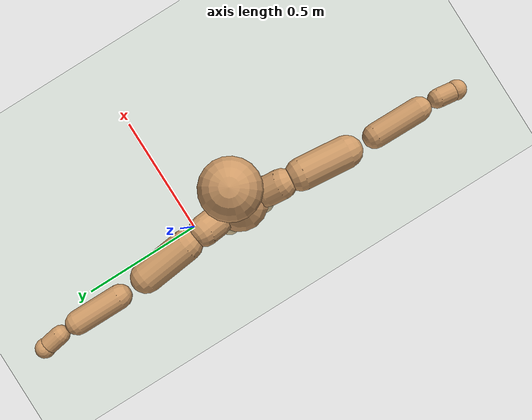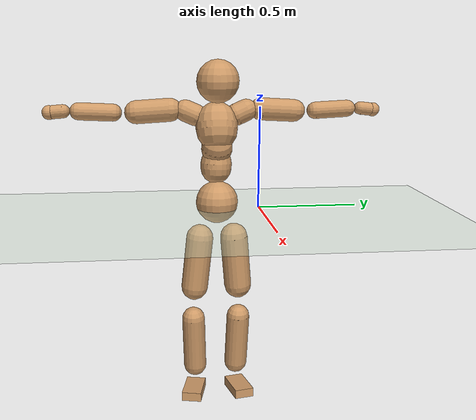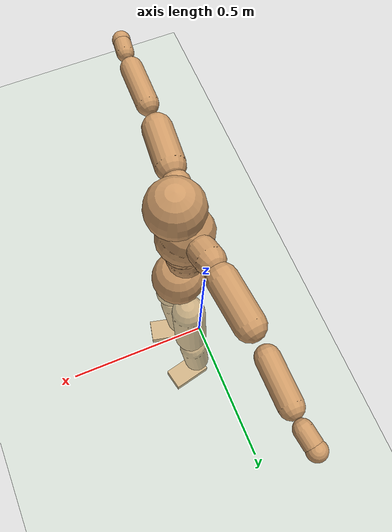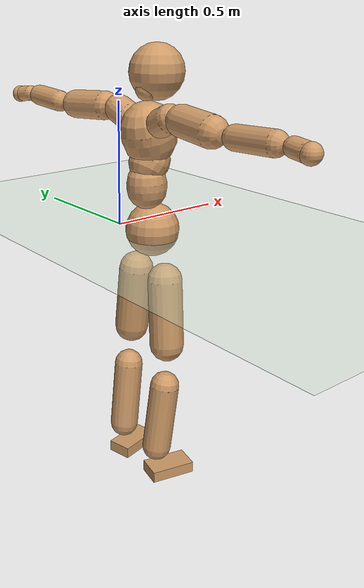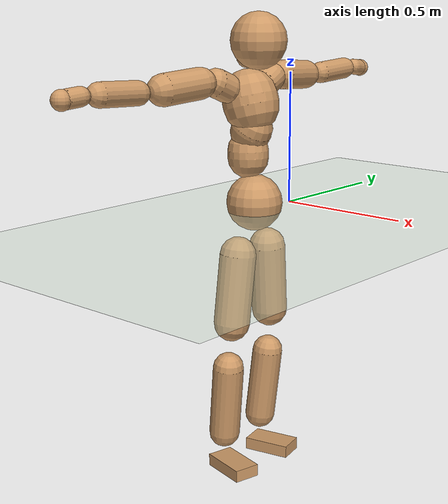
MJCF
<mujoco model="humanoid">
  <compiler coordinate="local" angle="radian"/>
  <default>
    <joint damping="0.0" armature="0.01" stiffness="0.0" limited="true"/>
    <geom conaffinity="1" condim="3" contype="7" margin="0.001" rgba="0.8 0.6 .4 1"/>
  </default>
  <asset>
    <texture type="skybox" builtin="gradient" rgb1=".4 .5 .6" rgb2="0 0 0" width="100" height="100"/>
    <texture builtin="flat" height="1278" mark="cross" markrgb="1 1 1" name="texgeom" random="0.01" rgb1="0.8 0.6 0.4" rgb2="0.8 0.6 0.4" type="cube" width="127"/>
    <texture builtin="checker" height="100" name="texplane" rgb1="0 0 0" rgb2="0.8 0.8 0.8" type="2d" width="100"/>
    <material name="MatPlane" reflectance="0.5" shininess="1" specular="1" texrepeat="60 60" texture="texplane"/>
    <material name="geom" texture="texgeom" texuniform="true"/>
  </asset>
  <worldbody>
    <light cutoff="100" diffuse="1 1 1" dir="-0 0 -1.3" directional="true" exponent="1" pos="0 0 1.3" specular=".1 .1 .1"/>
    <geom conaffinity="1" condim="3" name="floor" pos="0 0 0" rgba="0.8 0.9 0.8 1" size="100 100 .2" type="plane" material="MatPlane"/>
    <body name="Pelvis" pos="0.0005 -0.2119 0.032">
      <freejoint name="Pelvis"/>
      <geom type="sphere" contype="1" conaffinity="1" density="500" size="0.1054" pos="0.0000 0.0000 0.0000" name="Pelvis"/>
      <body name="L_Hip" pos="-0.0076 0.0808 -0.0994">
        <joint name="L_Hip_x" type="hinge" pos="0 0 0" axis="1 0 0" stiffness="800" damping="80" armature="0.02" range="-180.0000 180.0000"/>
        <joint name="L_Hip_y" type="hinge" pos="0 0 0" axis="0 1 0" stiffness="800" damping="80" armature="0.02" range="-180.0000 180.0000"/>
        <joint name="L_Hip_z" type="hinge" pos="0 0 0" axis="0 0 1" stiffness="800" damping="80" armature="0.02" range="-180.0000 180.0000"/>
        <geom type="capsule" contype="1" conaffinity="1" density="500" fromto="-0.0021 0.0076 -0.0869 -0.0083 0.0303 -0.3476" size="0.0692" name="L_Hip"/>
        <body name="L_Knee" pos="-0.0103 0.0379 -0.4345">
          <joint name="L_Knee_x" type="hinge" pos="0 0 0" axis="1 0 0" stiffness="800" damping="80" armature="0.02" range="-180.0000 180.0000"/>
          <joint name="L_Knee_y" type="hinge" pos="0 0 0" axis="0 1 0" stiffness="800" damping="80" armature="0.02" range="-180.0000 180.0000"/>
          <joint name="L_Knee_z" type="hinge" pos="0 0 0" axis="0 0 1" stiffness="800" damping="80" armature="0.02" range="-180.0000 180.0000"/>
          <geom type="capsule" contype="1" conaffinity="1" density="500" fromto="-0.0106 -0.0025 -0.0928 -0.0423 -0.0100 -0.3713" size="0.0591" name="L_Knee"/>
          <body name="L_Ankle" pos="-0.0529 -0.0124 -0.4641">
            <joint name="L_Ankle_x" type="hinge" pos="0 0 0" axis="1 0 0" stiffness="800" damping="80" armature="0.02" range="-180.0000 180.0000"/>
            <joint name="L_Ankle_y" type="hinge" pos="0 0 0" axis="0 1 0" stiffness="800" damping="80" armature="0.02" range="-180.0000 180.0000"/>
            <joint name="L_Ankle_z" type="hinge" pos="0 0 0" axis="0 0 1" stiffness="800" damping="80" armature="0.02" range="-180.0000 180.0000"/>
            <geom type="box" contype="1" conaffinity="1" density="500" pos="0.0636 0.0139 -0.0325" size="0.0902 0.05 0.0234" quat="0.9942 0.0000 0.0000 0.1076" name="L_Ankle"/>
            <body name="L_Toe" pos="0.1273 0.0279 -0.0649">
              <joint name="L_Toe_x" type="hinge" pos="0 0 0" axis="1 0 0" stiffness="500" damping="50" armature="0.02" range="-180.0000 180.0000"/>
              <joint name="L_Toe_y" type="hinge" pos="0 0 0" axis="0 1 0" stiffness="500" damping="50" armature="0.02" range="-180.0000 180.0000"/>
              <joint name="L_Toe_z" type="hinge" pos="0 0 0" axis="0 0 1" stiffness="500" damping="50" armature="0.02" range="-180.0000 180.0000"/>
              <geom type="box" contype="1" conaffinity="1" density="500" pos="0.0000 0.0000 0.0322" size="0.001 0.0025 0.0012" quat="0.9936 0.0000 0.0000 0.1133" name="L_Toe"/>
            </body>
          </body>
        </body>
      </body>
      <body name="R_Hip" pos="-0.0032 -0.0778 -0.0988">
        <joint name="R_Hip_x" type="hinge" pos="0 0 0" axis="1 0 0" stiffness="800" damping="80" armature="0.02" range="-180.0000 180.0000"/>
        <joint name="R_Hip_y" type="hinge" pos="0 0 0" axis="0 1 0" stiffness="800" damping="80" armature="0.02" range="-180.0000 180.0000"/>
        <joint name="R_Hip_z" type="hinge" pos="0 0 0" axis="0 0 1" stiffness="800" damping="80" armature="0.02" range="-180.0000 180.0000"/>
        <geom type="capsule" contype="1" conaffinity="1" density="500" fromto="-0.0026 -0.0092 -0.0881 -0.0105 -0.0368 -0.3523" size="0.0682" name="R_Hip"/>
        <body name="R_Knee" pos="-0.0131 -0.046 -0.4404">
          <joint name="R_Knee_x" type="hinge" pos="0 0 0" axis="1 0 0" stiffness="800" damping="80" armature="0.02" range="-180.0000 180.0000"/>
          <joint name="R_Knee_y" type="hinge" pos="0 0 0" axis="0 1 0" stiffness="800" damping="80" armature="0.02" range="-180.0000 180.0000"/>
          <joint name="R_Knee_z" type="hinge" pos="0 0 0" axis="0 0 1" stiffness="800" damping="80" armature="0.02" range="-180.0000 180.0000"/>
          <geom type="capsule" contype="1" conaffinity="1" density="500" fromto="-0.0102 0.0032 -0.0930 -0.0407 0.0126 -0.3719" size="0.0591" name="R_Knee"/>
          <body name="R_Ankle" pos="-0.0509 0.0158 -0.4649">
            <joint name="R_Ankle_x" type="hinge" pos="0 0 0" axis="1 0 0" stiffness="800" damping="80" armature="0.02" range="-180.0000 180.0000"/>
            <joint name="R_Ankle_y" type="hinge" pos="0 0 0" axis="0 1 0" stiffness="800" damping="80" armature="0.02" range="-180.0000 180.0000"/>
            <joint name="R_Ankle_z" type="hinge" pos="0 0 0" axis="0 0 1" stiffness="800" damping="80" armature="0.02" range="-180.0000 180.0000"/>
            <geom type="box" contype="1" conaffinity="1" density="500" pos="0.0658 -0.0152 -0.0278" size="0.0922 0.0504 0.0231" quat="0.9936 0.0000 0.0000 -0.1134" name="R_Ankle"/>
            <body name="R_Toe" pos="0.1316 -0.0304 -0.0556">
              <joint name="R_Toe_x" type="hinge" pos="0 0 0" axis="1 0 0" stiffness="500" damping="50" armature="0.02" range="-180.0000 180.0000"/>
              <joint name="R_Toe_y" type="hinge" pos="0 0 0" axis="0 1 0" stiffness="500" damping="50" armature="0.02" range="-180.0000 180.0000"/>
              <joint name="R_Toe_z" type="hinge" pos="0 0 0" axis="0 0 1" stiffness="500" damping="50" armature="0.02" range="-180.0000 180.0000"/>
              <geom type="box" contype="1" conaffinity="1" density="500" pos="0.0000 0.0000 0.0304" size="0.0009 0.0025 0.0013" quat="0.9945 0.0000 0.0000 -0.1046" name="R_Toe"/>
            </body>
          </body>
        </body>
      </body>
      <body name="Torso" pos="-0.028 -0.0028 0.1143">
        <joint name="Torso_x" type="hinge" pos="0 0 0" axis="1 0 0" stiffness="1000" damping="100" armature="0.02" range="-180.0000 180.0000"/>
        <joint name="Torso_y" type="hinge" pos="0 0 0" axis="0 1 0" stiffness="1000" damping="100" armature="0.02" range="-180.0000 180.0000"/>
        <joint name="Torso_z" type="hinge" pos="0 0 0" axis="0 0 1" stiffness="1000" damping="100" armature="0.02" range="-180.0000 180.0000"/>
        <geom type="capsule" contype="1" conaffinity="1" density="500" fromto="-0.0025 0.0020 0.0775 -0.0017 0.0014 0.0517" size="0.077" name="Torso"/>
        <body name="Spine" pos="-0.0042 0.0034 0.1291">
          <joint name="Spine_x" type="hinge" pos="0 0 0" axis="1 0 0" stiffness="1000" damping="100" armature="0.02" range="-180.0000 180.0000"/>
          <joint name="Spine_y" type="hinge" pos="0 0 0" axis="0 1 0" stiffness="1000" damping="100" armature="0.02" range="-180.0000 180.0000"/>
          <joint name="Spine_z" type="hinge" pos="0 0 0" axis="0 0 1" stiffness="1000" damping="100" armature="0.02" range="-180.0000 180.0000"/>
          <geom type="capsule" contype="1" conaffinity="1" density="500" fromto="0.0196 0.0007 0.0312 0.0131 0.0005 0.0208" size="0.0772" name="Spine"/>
          <body name="Chest" pos="0.0327 0.0012 0.052">
            <joint name="Chest_x" type="hinge" pos="0 0 0" axis="1 0 0" stiffness="1000" damping="100" armature="0.02" range="-180.0000 180.0000"/>
            <joint name="Chest_y" type="hinge" pos="0 0 0" axis="0 1 0" stiffness="1000" damping="100" armature="0.02" range="-180.0000 180.0000"/>
            <joint name="Chest_z" type="hinge" pos="0 0 0" axis="0 0 1" stiffness="1000" damping="100" armature="0.02" range="-180.0000 180.0000"/>
            <geom type="capsule" contype="1" conaffinity="1" density="500" fromto="-0.0256 -0.0008 0.0953 -0.0171 -0.0006 0.0635" size="0.1038" name="Chest"/>
            <body name="Neck" pos="-0.0439 -0.0026 0.2272">
              <joint name="Neck_x" type="hinge" pos="0 0 0" axis="1 0 0" stiffness="500" damping="50" armature="0.02" range="-180.0000 180.0000"/>
              <joint name="Neck_y" type="hinge" pos="0 0 0" axis="0 1 0" stiffness="500" damping="50" armature="0.02" range="-180.0000 180.0000"/>
              <joint name="Neck_z" type="hinge" pos="0 0 0" axis="0 0 1" stiffness="500" damping="50" armature="0.02" range="-180.0000 180.0000"/>
              <geom type="capsule" contype="1" conaffinity="1" density="500" fromto="0.0119 0.0007 0.0143 0.0478 0.0028 0.0571" size="0.0439" name="Neck"/>
              <body name="Head" pos="0.0597 0.0035 0.0713">
                <joint name="Head_x" type="hinge" pos="0 0 0" axis="1 0 0" stiffness="500" damping="50" armature="0.02" range="-180.0000 180.0000"/>
                <joint name="Head_y" type="hinge" pos="0 0 0" axis="0 1 0" stiffness="500" damping="50" armature="0.02" range="-180.0000 180.0000"/>
                <joint name="Head_z" type="hinge" pos="0 0 0" axis="0 0 1" stiffness="500" damping="50" armature="0.02" range="-180.0000 180.0000"/>
                <geom type="sphere" contype="1" conaffinity="1" density="500" size="0.1040" pos="0.0000 0.0000 0.0000" name="Head"/>
              </body>
            </body>
            <body name="L_Thorax" pos="-0.0394 0.0801 0.1253">
              <joint name="L_Thorax_x" type="hinge" pos="0 0 0" axis="1 0 0" stiffness="500" damping="50" armature="0.02" range="-180.0000 180.0000"/>
              <joint name="L_Thorax_y" type="hinge" pos="0 0 0" axis="0 1 0" stiffness="500" damping="50" armature="0.02" range="-180.0000 180.0000"/>
              <joint name="L_Thorax_z" type="hinge" pos="0 0 0" axis="0 0 1" stiffness="500" damping="50" armature="0.02" range="-180.0000 180.0000"/>
              <geom type="capsule" contype="1" conaffinity="1" density="500" fromto="-0.0019 0.0171 0.0074 -0.0076 0.0684 0.0295" size="0.0542" name="L_Thorax"/>
              <body name="L_Shoulder" pos="-0.0096 0.0855 0.0369">
                <joint name="L_Shoulder_x" type="hinge" pos="0 0 0" axis="1 0 0" stiffness="500" damping="50" armature="0.02" range="-720.0000 720.0000"/>
                <joint name="L_Shoulder_y" type="hinge" pos="0 0 0" axis="0 1 0" stiffness="500" damping="50" armature="0.02" range="-720.0000 720.0000"/>
                <joint name="L_Shoulder_z" type="hinge" pos="0 0 0" axis="0 0 1" stiffness="500" damping="50" armature="0.02" range="-720.0000 720.0000"/>
                <geom type="capsule" contype="1" conaffinity="1" density="500" fromto="-0.0067 0.0570 -0.0038 -0.0268 0.2282 -0.0152" size="0.0555" name="L_Shoulder"/>
                <body name="L_Elbow" pos="-0.0335 0.2852 -0.019">
                  <joint name="L_Elbow_x" type="hinge" pos="0 0 0" axis="1 0 0" stiffness="500" damping="50" armature="0.02" range="-720.0000 720.0000"/>
                  <joint name="L_Elbow_y" type="hinge" pos="0 0 0" axis="0 1 0" stiffness="500" damping="50" armature="0.02" range="-720.0000 720.0000"/>
                  <joint name="L_Elbow_z" type="hinge" pos="0 0 0" axis="0 0 1" stiffness="500" damping="50" armature="0.02" range="-720.0000 720.0000"/>
                  <geom type="capsule" contype="1" conaffinity="1" density="500" fromto="0.0001 0.0540 0.0027 0.0003 0.2158 0.0109" size="0.0423" name="L_Elbow"/>
                  <body name="L_Wrist" pos="0.0004 0.2698 0.0136">
                    <joint name="L_Wrist_x" type="hinge" pos="0 0 0" axis="1 0 0" stiffness="300" damping="30" armature="0.02" range="-180.0000 180.0000"/>
                    <joint name="L_Wrist_y" type="hinge" pos="0 0 0" axis="0 1 0" stiffness="300" damping="30" armature="0.02" range="-180.0000 180.0000"/>
                    <joint name="L_Wrist_z" type="hinge" pos="0 0 0" axis="0 0 1" stiffness="300" damping="30" armature="0.02" range="-180.0000 180.0000"/>
                    <geom type="capsule" contype="1" conaffinity="1" density="500" fromto="-0.0029 0.0172 -0.0021 -0.0116 0.0688 -0.0085" size="0.0323" name="L_Wrist"/>
                    <body name="L_Hand" pos="-0.0145 0.086 -0.0106">
                      <joint name="L_Hand_x" type="hinge" pos="0 0 0" axis="1 0 0" stiffness="300" damping="30" armature="0.02" range="-180.0000 180.0000"/>
                      <joint name="L_Hand_y" type="hinge" pos="0 0 0" axis="0 1 0" stiffness="300" damping="30" armature="0.02" range="-180.0000 180.0000"/>
                      <joint name="L_Hand_z" type="hinge" pos="0 0 0" axis="0 0 1" stiffness="300" damping="30" armature="0.02" range="-180.0000 180.0000"/>
                      <geom type="sphere" contype="1" conaffinity="1" density="500" size="0.0346" pos="0.0000 0.0000 0.0000" name="L_Hand"/>
                    </body>
                  </body>
                </body>
              </body>
            </body>
            <body name="R_Thorax" pos="-0.0449 -0.0817 0.1239">
              <joint name="R_Thorax_x" type="hinge" pos="0 0 0" axis="1 0 0" stiffness="500" damping="50" armature="0.02" range="-180.0000 180.0000"/>
              <joint name="R_Thorax_y" type="hinge" pos="0 0 0" axis="0 1 0" stiffness="500" damping="50" armature="0.02" range="-180.0000 180.0000"/>
              <joint name="R_Thorax_z" type="hinge" pos="0 0 0" axis="0 0 1" stiffness="500" damping="50" armature="0.02" range="-180.0000 180.0000"/>
              <geom type="capsule" contype="1" conaffinity="1" density="500" fromto="-0.0018 -0.0178 0.0076 -0.0072 -0.0712 0.0305" size="0.0532" name="R_Thorax"/>
              <body name="R_Shoulder" pos="-0.009 -0.089 0.0381">
                <joint name="R_Shoulder_x" type="hinge" pos="0 0 0" axis="1 0 0" stiffness="500" damping="50" armature="0.02" range="-720.0000 720.0000"/>
                <joint name="R_Shoulder_y" type="hinge" pos="0 0 0" axis="0 1 0" stiffness="500" damping="50" armature="0.02" range="-720.0000 720.0000"/>
                <joint name="R_Shoulder_z" type="hinge" pos="0 0 0" axis="0 0 1" stiffness="500" damping="50" armature="0.02" range="-720.0000 720.0000"/>
                <geom type="capsule" contype="1" conaffinity="1" density="500" fromto="-0.0056 -0.0557 -0.0039 -0.0222 -0.2227 -0.0155" size="0.0572" name="R_Shoulder"/>
                <body name="R_Elbow" pos="-0.0278 -0.2784 -0.0194">
                  <joint name="R_Elbow_x" type="hinge" pos="0 0 0" axis="1 0 0" stiffness="500" damping="50" armature="0.02" range="-720.0000 720.0000"/>
                  <joint name="R_Elbow_y" type="hinge" pos="0 0 0" axis="0 1 0" stiffness="500" damping="50" armature="0.02" range="-720.0000 720.0000"/>
                  <joint name="R_Elbow_z" type="hinge" pos="0 0 0" axis="0 0 1" stiffness="500" damping="50" armature="0.02" range="-720.0000 720.0000"/>
                  <geom type="capsule" contype="1" conaffinity="1" density="500" fromto="-0.0006 -0.0558 0.0026 -0.0025 -0.2231 0.0102" size="0.0429" name="R_Elbow"/>
                  <body name="R_Wrist" pos="-0.0031 -0.2789 0.0128">
                    <joint name="R_Wrist_x" type="hinge" pos="0 0 0" axis="1 0 0" stiffness="300" damping="30" armature="0.02" range="-180.0000 180.0000"/>
                    <joint name="R_Wrist_y" type="hinge" pos="0 0 0" axis="0 1 0" stiffness="300" damping="30" armature="0.02" range="-180.0000 180.0000"/>
                    <joint name="R_Wrist_z" type="hinge" pos="0 0 0" axis="0 0 1" stiffness="300" damping="30" armature="0.02" range="-180.0000 180.0000"/>
                    <geom type="capsule" contype="1" conaffinity="1" density="500" fromto="-0.0023 -0.0174 -0.0016 -0.0092 -0.0696 -0.0063" size="0.0332" name="R_Wrist"/>
                    <body name="R_Hand" pos="-0.0114 -0.087 -0.0079">
                      <joint name="R_Hand_x" type="hinge" pos="0 0 0" axis="1 0 0" stiffness="300" damping="30" armature="0.02" range="-180.0000 180.0000"/>
                      <joint name="R_Hand_y" type="hinge" pos="0 0 0" axis="0 1 0" stiffness="300" damping="30" armature="0.02" range="-180.0000 180.0000"/>
                      <joint name="R_Hand_z" type="hinge" pos="0 0 0" axis="0 0 1" stiffness="300" damping="30" armature="0.02" range="-180.0000 180.0000"/>
                      <geom type="sphere" contype="1" conaffinity="1" density="500" size="0.0349" pos="0.0000 0.0000 0.0000" name="R_Hand"/>
                    </body>
                  </body>
                </body>
              </body>
            </body>
          </body>
        </body>
      </body>
    </body>
  </worldbody>
  <actuator>
    <motor name="L_Hip_x" joint="L_Hip_x" gear="500"/>
    <motor name="L_Hip_y" joint="L_Hip_y" gear="500"/>
    <motor name="L_Hip_z" joint="L_Hip_z" gear="500"/>
    <motor name="L_Knee_x" joint="L_Knee_x" gear="500"/>
    <motor name="L_Knee_y" joint="L_Knee_y" gear="500"/>
    <motor name="L_Knee_z" joint="L_Knee_z" gear="500"/>
    <motor name="L_Ankle_x" joint="L_Ankle_x" gear="500"/>
    <motor name="L_Ankle_y" joint="L_Ankle_y" gear="500"/>
    <motor name="L_Ankle_z" joint="L_Ankle_z" gear="500"/>
    <motor name="L_Toe_x" joint="L_Toe_x" gear="500"/>
    <motor name="L_Toe_y" joint="L_Toe_y" gear="500"/>
    <motor name="L_Toe_z" joint="L_Toe_z" gear="500"/>
    <motor name="R_Hip_x" joint="R_Hip_x" gear="500"/>
    <motor name="R_Hip_y" joint="R_Hip_y" gear="500"/>
    <motor name="R_Hip_z" joint="R_Hip_z" gear="500"/>
    <motor name="R_Knee_x" joint="R_Knee_x" gear="500"/>
    <motor name="R_Knee_y" joint="R_Knee_y" gear="500"/>
    <motor name="R_Knee_z" joint="R_Knee_z" gear="500"/>
    <motor name="R_Ankle_x" joint="R_Ankle_x" gear="500"/>
    <motor name="R_Ankle_y" joint="R_Ankle_y" gear="500"/>
    <motor name="R_Ankle_z" joint="R_Ankle_z" gear="500"/>
    <motor name="R_Toe_x" joint="R_Toe_x" gear="500"/>
    <motor name="R_Toe_y" joint="R_Toe_y" gear="500"/>
    <motor name="R_Toe_z" joint="R_Toe_z" gear="500"/>
    <motor name="Torso_x" joint="Torso_x" gear="500"/>
    <motor name="Torso_y" joint="Torso_y" gear="500"/>
    <motor name="Torso_z" joint="Torso_z" gear="500"/>
    <motor name="Spine_x" joint="Spine_x" gear="500"/>
    <motor name="Spine_y" joint="Spine_y" gear="500"/>
    <motor name="Spine_z" joint="Spine_z" gear="500"/>
    <motor name="Chest_x" joint="Chest_x" gear="500"/>
    <motor name="Chest_y" joint="Chest_y" gear="500"/>
    <motor name="Chest_z" joint="Chest_z" gear="500"/>
    <motor name="Neck_x" joint="Neck_x" gear="500"/>
    <motor name="Neck_y" joint="Neck_y" gear="500"/>
    <motor name="Neck_z" joint="Neck_z" gear="500"/>
    <motor name="Head_x" joint="Head_x" gear="500"/>
    <motor name="Head_y" joint="Head_y" gear="500"/>
    <motor name="Head_z" joint="Head_z" gear="500"/>
    <motor name="L_Thorax_x" joint="L_Thorax_x" gear="500"/>
    <motor name="L_Thorax_y" joint="L_Thorax_y" gear="500"/>
    <motor name="L_Thorax_z" joint="L_Thorax_z" gear="500"/>
    <motor name="L_Shoulder_x" joint="L_Shoulder_x" gear="500"/>
    <motor name="L_Shoulder_y" joint="L_Shoulder_y" gear="500"/>
    <motor name="L_Shoulder_z" joint="L_Shoulder_z" gear="500"/>
    <motor name="L_Elbow_x" joint="L_Elbow_x" gear="500"/>
    <motor name="L_Elbow_y" joint="L_Elbow_y" gear="500"/>
    <motor name="L_Elbow_z" joint="L_Elbow_z" gear="500"/>
    <motor name="L_Wrist_x" joint="L_Wrist_x" gear="500"/>
    <motor name="L_Wrist_y" joint="L_Wrist_y" gear="500"/>
    <motor name="L_Wrist_z" joint="L_Wrist_z" gear="500"/>
    <motor name="L_Hand_x" joint="L_Hand_x" gear="500"/>
    <motor name="L_Hand_y" joint="L_Hand_y" gear="500"/>
    <motor name="L_Hand_z" joint="L_Hand_z" gear="500"/>
    <motor name="R_Thorax_x" joint="R_Thorax_x" gear="500"/>
    <motor name="R_Thorax_y" joint="R_Thorax_y" gear="500"/>
    <motor name="R_Thorax_z" joint="R_Thorax_z" gear="500"/>
    <motor name="R_Shoulder_x" joint="R_Shoulder_x" gear="500"/>
    <motor name="R_Shoulder_y" joint="R_Shoulder_y" gear="500"/>
    <motor name="R_Shoulder_z" joint="R_Shoulder_z" gear="500"/>
    <motor name="R_Elbow_x" joint="R_Elbow_x" gear="500"/>
    <motor name="R_Elbow_y" joint="R_Elbow_y" gear="500"/>
    <motor name="R_Elbow_z" joint="R_Elbow_z" gear="500"/>
    <motor name="R_Wrist_x" joint="R_Wrist_x" gear="500"/>
    <motor name="R_Wrist_y" joint="R_Wrist_y" gear="500"/>
    <motor name="R_Wrist_z" joint="R_Wrist_z" gear="500"/>
    <motor name="R_Hand_x" joint="R_Hand_x" gear="500"/>
    <motor name="R_Hand_y" joint="R_Hand_y" gear="500"/>
    <motor name="R_Hand_z" joint="R_Hand_z" gear="500"/>
  </actuator>
  <contact>
    <exclude body1="Torso" body2="Chest"/>
    <exclude body1="Head" body2="Chest"/>
    <exclude body1="R_Knee" body2="R_Toe"/>
    <exclude body1="R_Knee" body2="L_Ankle"/>
    <exclude body1="R_Knee" body2="L_Toe"/>
    <exclude body1="L_Knee" body2="L_Toe"/>
    <exclude body1="L_Knee" body2="R_Ankle"/>
    <exclude body1="L_Knee" body2="R_Toe"/>
    <exclude body1="L_Shoulder" body2="Chest"/>
    <exclude body1="R_Shoulder" body2="Chest"/>
  </contact>
  <sensor/>
  <size njmax="700" nconmax="700"/>
</mujoco>
